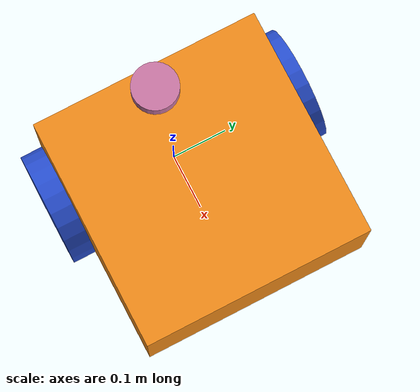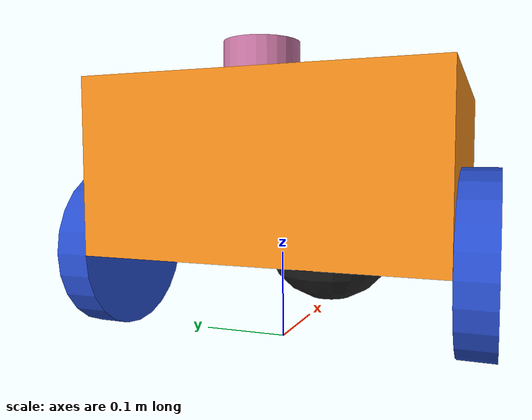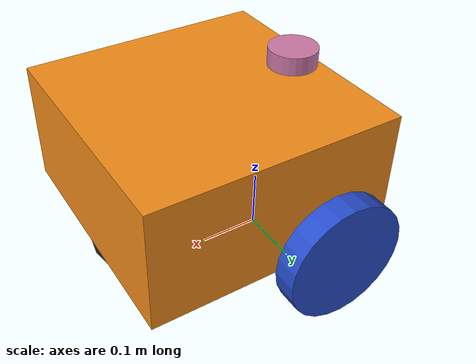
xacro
<?xml version="1.0"?>
<robot name="myrobotagv" xmlns:xacro="http://www.ros.org/wiki/xacro">

    <xacro:include filename="$(find my_robot_agv)/urdf/materials.xacro"/>
    <xacro:include filename="$(find my_robot_agv)/urdf/robot_core.xacro"/>
    <xacro:include filename="$(find my_robot_agv)/urdf/gazebo_control.xacro"/>

</robot>

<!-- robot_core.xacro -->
<robot xmlns:xacro="http://www.ros.org/wiki/xacro">

    <!-- BASE_LINK -->
    <link name="base_footprint">
       <origin xyz="0.0 0.0 0.0"/>
    </link>

    <joint name="base_joint" type="fixed">
        <origin xyz="0.0 0.0 0.1"/>
        <parent link="base_footprint"/>
        <child link="base_link"/>
    </joint>

    <link name="base_link">
       <origin xyz="0.0 0.0 0.0"/>
    </link>

    <!-- CHASSIS_LINK -->

    <joint name="chassis_joint" type="fixed">
        <parent link="base_link"/>
        <child link="chassis"/>
        <origin xyz="-0.1 0.0 0.0"/>
    </joint>

    <link name="chassis">
        <inertial>
            <origin xyz="0.2 0.0 0.1" rpy="0.0 0.0 0.0"/>
            <mass value="10.0"/>
            <inertia ixx="0.1" ixy="0.0" ixz="0.0" iyy="0.1" iyz="0.0" izz="0.1"/>
        </inertial>
        <visual>
            <origin xyz="0.2 0.0 0.1" rpy="0.0 0.0 0.0"/>
            <geometry>
                <box size="0.4 0.4 0.2"/>
            </geometry>
            <material name="orange"/>
        </visual>
        <collision>
            <origin xyz="0.2 0.0 0.1" rpy="0.0 0.0 0.0"/>
            <geometry>
                <box size="0.4 0.4 0.2"/>
            </geometry>
        </collision>
    </link>

    <gazebo reference="chassis">
        <material>Gazebo/Orange</material>
    </gazebo>

    <!-- WHEEL RIGHT and LEFT-->

    <xacro:macro name="wheel" params="name x y z">

        <joint name="joint_${name}" type="continuous">
            <origin xyz="${x} ${y} ${z}" rpy="${pi/2} 0.0 0.0"/>
            <parent link="base_link"/>
            <child link="${name}"/>
            <axis xyz="0.0 0.0 -1.0"/>
        </joint>

        <link name="${name}">
            <visual>
                <geometry>
                    <cylinder radius="0.1" length="0.04"/>
                </geometry>
                <material name="blue"/>
            </visual>
            <collision>
                <geometry>
                    <cylinder radius="0.1" length="0.04"/>
                </geometry>
            </collision>
            <inertial>
                <mass value="0.5"/>
                <inertia ixx="0.1" ixy="0.0" ixz="0.0" iyy="0.1" iyz="0.0" izz="0.1"/>
            </inertial>

        </link>

    </xacro:macro>

    <xacro:wheel name="wheel_left" x="0" y="0.22" z="0"/>
    <xacro:wheel name="wheel_right" x="0" y="-0.22" z="0"/>

    <gazebo reference="wheel_left">
        <material>Gazebo/Blue</material>
    </gazebo>

    <gazebo reference="wheel_right">
        <material>Gazebo/Blue</material>
    </gazebo>

    <!-- CASTER_WHEEL -->

    <joint name="joint_caster_wheel" type="fixed">
        <parent link="chassis"/>
        <child link="caster_wheel"/>
        <origin xyz="0.3 0.0 0.0"/>         <!--dich 0.3 theo truc x ke tu tam cua chassis-->
    </joint>

    <link name="caster_wheel">
        <visual>
            <geometry>
                <sphere radius="0.1"/>
            </geometry>
            <material name="black"/>
        </visual>
        <collision>
            <geometry>
                <sphere radius="0.1"/>
            </geometry>
        </collision>
        <inertial>
            <mass value="0.2"/>
            <inertia ixx="0.1" ixy="0.0" ixz="0.0" iyy="0.1" iyz="0.0" izz="0.1"/>
        </inertial>

    </link>

    <gazebo reference="caster_wheel">
        <material>Gazebo/FlatBlack</material>
        <mu1 value="0.001"/>
        <mu2 value="0.001"/>
    </gazebo>

    <!-- lidar -->

    <joint name="joint_scan" type="fixed">
        <origin xyz="-0.06 0.0 0.215" rpy="0.0 0.0 ${pi}"/>
        <parent link="base_link"/>
        <child link="base_scan"/>
    </joint>

    <link name="base_scan">
        <visual>
            <geometry>
                <cylinder radius="0.04" length="0.03"/>
                <material name="green"/>
            </geometry>
        </visual>
        <collision>
            <geometry>
                <cylinder radius="0.04" length="0.03"/>
                <material name="green"/>
            </geometry>
        </collision>
        <inertial>
            <mass value="0.114"/>
            <inertia ixx="0.01" ixy="0.0" ixz="0.0" iyy="0.01" iyz="0.0" izz="0.01"/>
        </inertial>
    </link>

    <!-- plugin lidar -->

    <gazebo reference="base_scan">
        <sensor type="ray" name="rplidar">
            <pose>0 0 0 0 0 0</pose>
            <visualize>false</visualize>
            <update_rate>40</update_rate>
            <ray>
                <scan>
                    <horizontal>
                        <samples>720</samples>
                        <resolution>1</resolution>
                        <min_angle>-2.87979</min_angle> <!--165 do = 2.87979 rad-->
                        <max_angle>2.87979</max_angle>
                    </horizontal>
                </scan>
                <range>
                    <min>0.10</min>
                    <max>20.0</max>
                    <resolution>0.01</resolution>
                </range>
                <noise>
                    <type>gaussian</type>
                    <mean>0.0</mean>
                    <stddev>0.01</stddev>
                </noise>
            </ray>
            <plugin name="gazebo_ros_head_hokuyo_controller" filename="libgazebo_ros_laser.so">
                <topicName>scan</topicName>
                <frameName>base_scan</frameName>
            </plugin>
        </sensor>
    </gazebo>

</robot>
